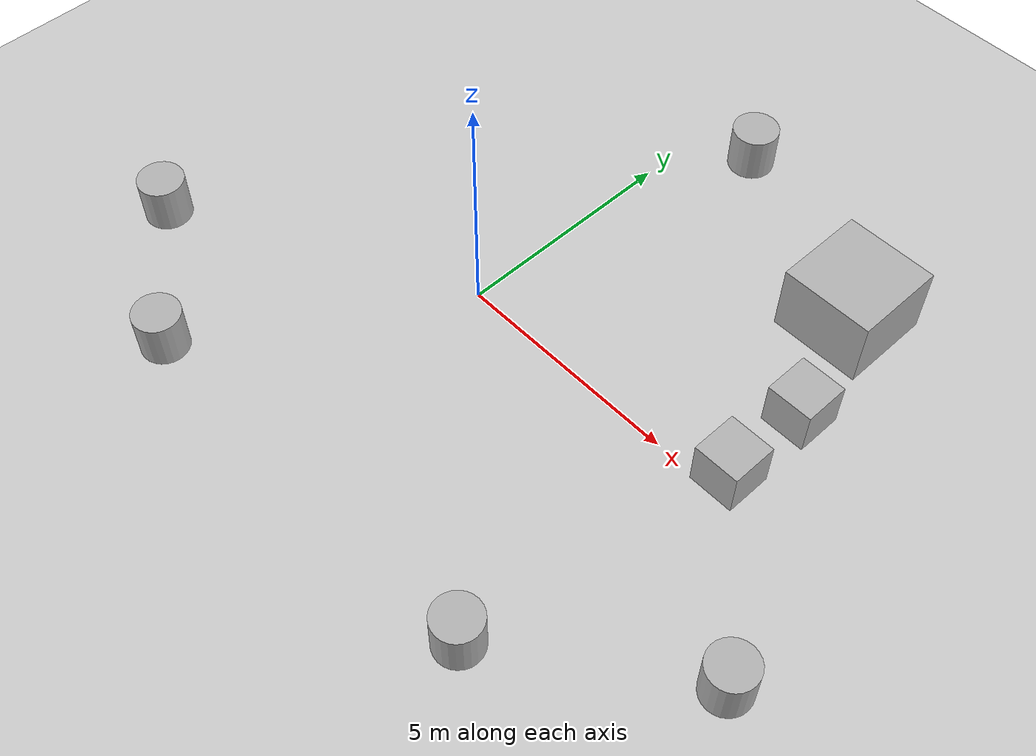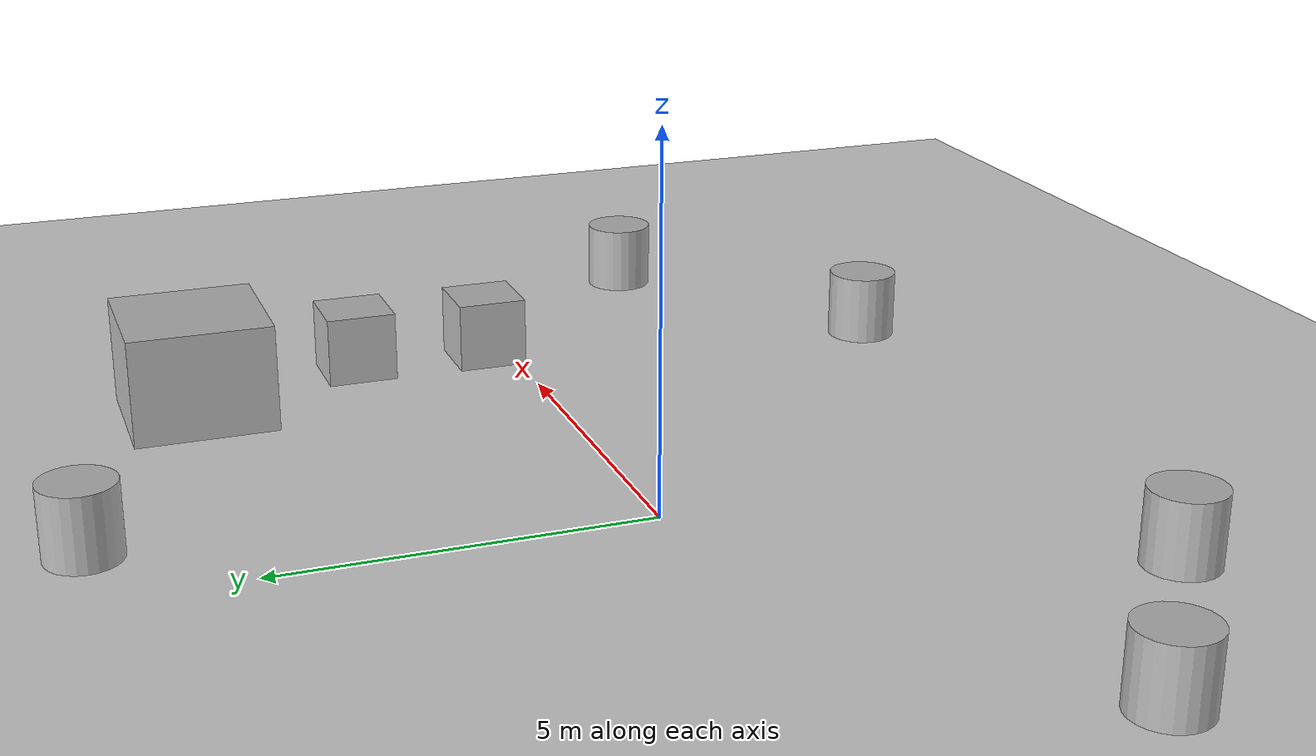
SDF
<?xml version="1.0"?>
<sdf version="1.7">
  <world name="my_world">

    <plugin
      filename="ignition-gazebo-physics-system"
      name="ignition::gazebo::systems::Physics"/>

    <plugin
      filename="ignition-gazebo-user-commands-system"
      name="ignition::gazebo::systems::UserCommands"/>

    <plugin
      filename="ignition-gazebo-scene-broadcaster-system"
      name="ignition::gazebo::systems::SceneBroadcaster"/>

    <plugin
      filename="ignition-gazebo-contact-system"
      name="ignition::gazebo::systems::Contact"/>

    <plugin
      filename="ignition-gazebo-sensors-system"
      name="ignition::gazebo::systems::Sensors">
      <render_engine>ogre2</render_engine>
    </plugin>

    <plugin
      filename="ignition-gazebo-imu-system"
      name="ignition::gazebo::systems::Imu"/>

    <gravity>0 0 -9.8</gravity>

    <light name="sun" type="directional">
      <cast_shadows>true</cast_shadows>
      <pose>0 0 20 0 0 0</pose>
      <diffuse>1 1 1 1</diffuse>
      <specular>0.2 0.2 0.2 1</specular>
      <direction>-0.5 0.1 -0.9</direction>
    </light>

    <model name="ground_plane">
      <static>true</static>
      <link name="link">
        <collision name="collision">
          <geometry>
            <plane>
              <normal>0 0 1</normal>
              <size>100 100</size>
            </plane>
          </geometry>
        </collision>
        <visual name="visual">
          <geometry>
            <plane>
              <normal>0 0 1</normal>
              <size>100 100</size>
            </plane>
          </geometry>
          <material>
            <ambient>0.8 0.8 0.8 1</ambient>
            <diffuse>0.8 0.8 0.8 1</diffuse>
            <specular>0.8 0.8 0.8 1</specular>
          </material>
        </visual>
      </link>
    </model>

    <model name='box'>
      <pose>6.42104 2.38243 0.5 0 -0 0</pose>
      <static>true</static>
      <link name='box_link'>
        <collision name='box_collision'>
          <geometry>
            <box><size>1 1 1</size></box>
          </geometry>
        </collision>
        <visual name='box_visual'>
          <geometry>
            <box><size>1 1 1</size></box>
          </geometry>
          <material>
            <ambient>0.3 0.3 0.3 1</ambient>
            <diffuse>0.7 0.7 0.7 1</diffuse>
          </material>
        </visual>
      </link>
    </model>

    <model name='box_0'>
      <pose>6.38989 0.41022 0.5 0 -0 0</pose>
      <static>true</static>
      <link name='box_link'>
        <collision name='box_collision'>
          <geometry>
            <box><size>1 1 1</size></box>
          </geometry>
        </collision>
        <visual name='box_visual'>
          <geometry>
            <box><size>1 1 1</size></box>
          </geometry>
          <material>
            <ambient>0.3 0.3 0.3 1</ambient>
            <diffuse>0.7 0.7 0.7 1</diffuse>
          </material>
        </visual>
      </link>
    </model>

    <model name='box_1'>
      <pose>5.54651 4.87399 0.5 0 -0 0</pose>
      <static>true</static>
      <link name='box_link'>
        <collision name='box_collision'>
          <geometry>
            <box><size>2 2 2</size></box>
          </geometry>
        </collision>
        <visual name='box_visual'>
          <geometry>
            <box><size>2 2 2</size></box>
          </geometry>
          <material>
            <ambient>0.3 0.3 0.3 1</ambient>
            <diffuse>0.7 0.7 0.7 1</diffuse>
          </material>
        </visual>
      </link>
    </model>

    <model name='cylinder'>
      <pose>5.46246 -5.44202 0.5 0 -0 0</pose>
      <static>true</static>
      <link name='cylinder_link'>
        <collision name='cylinder_collision'>
          <geometry>
            <cylinder><radius>0.5</radius><length>1</length></cylinder>
          </geometry>
        </collision>
        <visual name='cylinder_visual'>
          <geometry>
            <cylinder><radius>0.5</radius><length>1</length></cylinder>
          </geometry>
          <material>
            <ambient>0.3 0.3 0.3 1</ambient>
            <diffuse>0.7 0.7 0.7 1</diffuse>
          </material>
        </visual>
      </link>
    </model>

    <model name='cylinder_1'>
      <pose>-3.31518 -5.35771 0.5 0 -0 0</pose>
      <static>true</static>
      <link name='cylinder_link'>
        <collision name='cylinder_collision'>
          <geometry>
            <cylinder><radius>0.5</radius><length>1</length></cylinder>
          </geometry>
        </collision>
        <visual name='cylinder_visual'>
          <geometry>
            <cylinder><radius>0.5</radius><length>1</length></cylinder>
          </geometry>
          <material>
            <ambient>0.3 0.3 0.3 1</ambient>
            <diffuse>0.7 0.7 0.7 1</diffuse>
          </material>
        </visual>
      </link>
    </model>

    <model name='cylinder_2'>
      <pose>-6.20265 -3.24392 0.5 0 -0 0</pose>
      <static>true</static>
      <link name='cylinder_link'>
        <collision name='cylinder_collision'>
          <geometry>
            <cylinder><radius>0.5</radius><length>1</length></cylinder>
          </geometry>
        </collision>
        <visual name='cylinder_visual'>
          <geometry>
            <cylinder><radius>0.5</radius><length>1</length></cylinder>
          </geometry>
          <material>
            <ambient>0.3 0.3 0.3 1</ambient>
            <diffuse>0.7 0.7 0.7 1</diffuse>
          </material>
        </visual>
      </link>
    </model>

    <model name='cylinder_3'>
      <pose>9.16639 -2.75122 0.5 0 -0 0</pose>
      <static>true</static>
      <link name='cylinder_link'>
        <collision name='cylinder_collision'>
          <geometry>
            <cylinder><radius>0.5</radius><length>1</length></cylinder>
          </geometry>
        </collision>
        <visual name='cylinder_visual'>
          <geometry>
            <cylinder><radius>0.5</radius><length>1</length></cylinder>
          </geometry>
          <material>
            <ambient>0.3 0.3 0.3 1</ambient>
            <diffuse>0.7 0.7 0.7 1</diffuse>
          </material>
        </visual>
      </link>
    </model>

    <model name='cylinder_4'>
      <pose>1.28195 6.87637 0.5 0 -0 0</pose>
      <static>true</static>
      <link name='cylinder_link'>
        <collision name='cylinder_collision'>
          <geometry>
            <cylinder><radius>0.5</radius><length>1</length></cylinder>
          </geometry>
        </collision>
        <visual name='cylinder_visual'>
          <geometry>
            <cylinder><radius>0.5</radius><length>1</length></cylinder>
          </geometry>
          <material>
            <ambient>0.3 0.3 0.3 1</ambient>
            <diffuse>0.7 0.7 0.7 1</diffuse>
          </material>
        </visual>
      </link>
    </model>

  </world>
</sdf>
